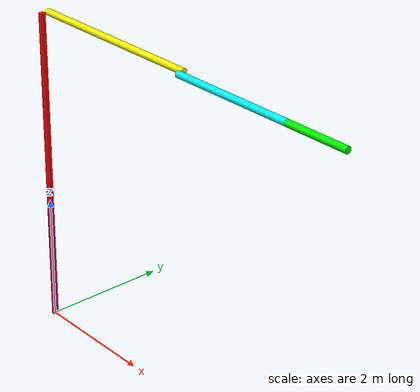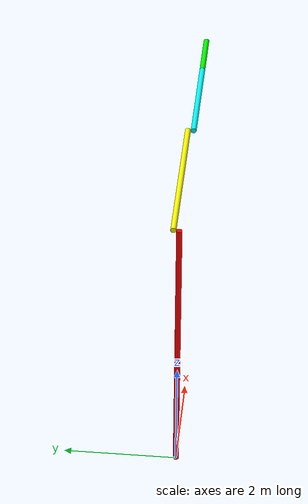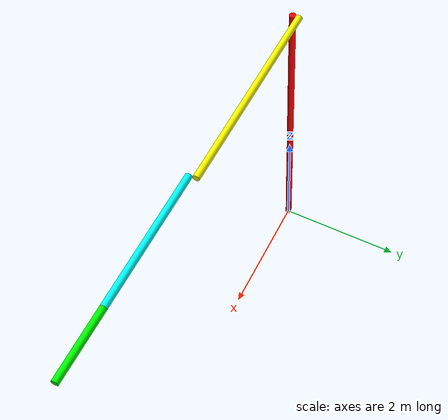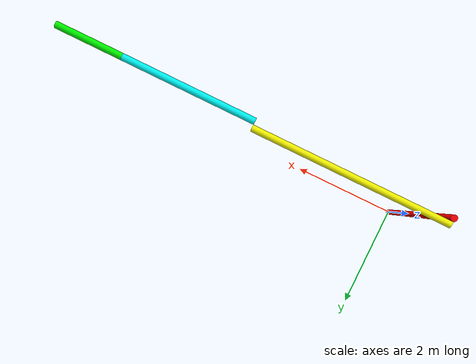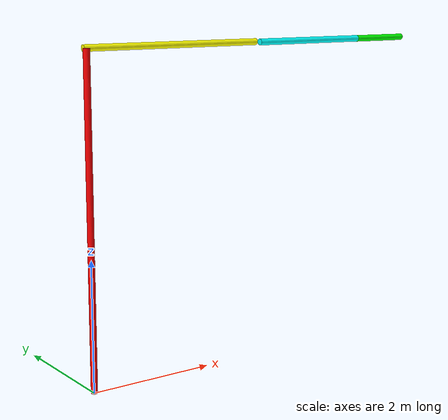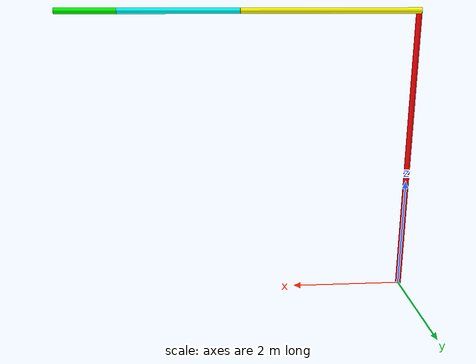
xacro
<?xml version="1.0"?>
<robot xmlns:xacro="http://www.ros.org/wiki/xacro" name="robot_arm">
    <xacro:arg name="initial_positions_file" default="initial_positions.yaml" />

    <!-- Import robot_arm urdf file -->
    <xacro:include filename="$(find description)/urdf/robot_arm.urdf.xacro" />

    <!-- Import control_xacro -->
    <xacro:include filename="robot_arm.ros2_control.xacro" />

    <xacro:robot_arm_ros2_control name="FakeSystem" initial_positions_file="$(arg initial_positions_file)"/>

</robot>

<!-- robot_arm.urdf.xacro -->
<robot name="robot_arm" xmlns:xacro="https://ww.ros.org/wiki/xacro">

    <xacro:include filename="inertia.urdf.xacro"/>
    <!-- Include Gazebo Parameters -->
    <xacro:include filename="gazebo.xacro"/>

    <!-- Include ros2_control Plugins -->
    <xacro:include filename="robot_arm_ros2_control.xacro"/>

    <xacro:property name="PI" value="3.14159265359" />
    <xacro:property name="effort" value="30.0" />
    <xacro:property name="velocity" value="10.0" />

    <xacro:macro name="default_transmission" params="number">
        <transmission name="transmission_${number}">
            <plugin>transmission_interface/SimpleTransmission</plugin>
            <actuator name="motor_${number}" role="actuator1"/>
            <joint name="joint${number}"    role="joint1">
                <mechanical_reduction>1.0</mechanical_reduction>
            </joint>
        </transmission>
    </xacro:macro>

    <link name="world"/>

    <joint name="joint1" type="continuous">
        <origin xyz="0.0 0.0 0.0" rpy="0.0 0.0 0.0"/>
        <parent link="world"/>
        <child link="a1"/>
        <axis xyz="0.0 0.0 1.0"/>
        <limit lower="-${PI}" upper="${PI}"
                effort="${effort}" velocity="${velocity}"/>
        <ros2_control>
            <hardwareInterface>hardware_interface/PositionJointInterface</hardwareInterface>
        </ros2_control>
    </joint>

    <link name="a1">
        <xacro:inertial_cylinder mass="0.5" length="5.0" radius="0.05">
            <origin xyz="0.0 0 2.5" rpy="0 0 0"/>
        </xacro:inertial_cylinder>
        <visual name="">
            <origin xyz="0.0 0.0 2.5" rpy="0.0 0.0 0.0"/>
            <geometry>
                <cylinder radius="0.05" length="5.0"/>
            </geometry>
            <material name="">
                <color rgba="1.0 0.0 0.0 1.0"/>
            </material>
        </visual>
        <collision>
            <origin xyz="0.0 0.0 2.5" rpy="0.0 0.0 0.0"/>
            <geometry>
                <cylinder radius="0.05" length="5.0"/>
            </geometry>
        </collision>
    </link>

    <joint name="joint2" type="continuous">
        <origin xyz="0.0 0.1 5.0" rpy="0.0 0.0 0.0"/>
        <parent link="a1"/>
        <child link="a2"/>
        <axis xyz="0.0 1.0 0.0"/>
        <limit lower="-${PI/2}" upper="${PI/2}"
                effort="${effort}" velocity="${velocity}"/>
        <ros2_control>
            <hardwareInterface>hardware_interface/PositionJointInterface</hardwareInterface>
        </ros2_control>
    </joint>

    <link name="a2">
        <xacro:inertial_cylinder mass="0.3" length="3.0" radius="0.05">
            <origin xyz="1.5 0 0.0" rpy="0 1.57 0"/>
        </xacro:inertial_cylinder>
        <visual name="">
            <origin xyz="1.5 0.0 0.0" rpy="0.0 1.57 0.0"/>
            <geometry>
                <cylinder radius="0.05" length="3.0"/>
            </geometry>
            <material name="">
                <color rgba="1.0 1.0 0.0 1.0"/>
            </material>
        </visual>
        <collision>
            <origin xyz="1.5 0.0 0.0" rpy="0.0 1.57 0.0"/>
            <geometry>
                <cylinder radius="0.05" length="3.0"/>
            </geometry>
        </collision>
    </link>

    <joint name="joint3" type="continuous">
        <origin xyz="3.0 -0.1 0.0" rpy="0.0 0.0 0.0"/>
        <parent link="a2"/>
        <child link="a3"/>
        <axis xyz="0.0 1.0 0.0"/>
        <limit lower="0.0" upper="${PI}"
                effort="${effort}" velocity="${velocity}"/>
        <ros2_control>
            <hardwareInterface>hardware_interface/PositionJointInterface</hardwareInterface>
        </ros2_control>
    </joint>

    <link name="a3">
        <xacro:inertial_cylinder mass="0.2" length="2.0" radius="0.05">
            <origin xyz="1.0 0 0.0" rpy="0 1.57 0"/>
        </xacro:inertial_cylinder>
        <visual name="">
            <origin xyz="1.0 0.0 0.0" rpy="0.0 1.57 0.0"/>
            <geometry>
                <cylinder radius="0.05" length="2.0"/>
            </geometry>
            <material name="">
                <color rgba="0.0 1.0 1.0 1.0"/>
            </material>
        </visual>
        <collision>
            <origin xyz="1.0 0.0 0.0" rpy="0.0 1.57 0.0"/>
            <geometry>
                <cylinder radius="0.05" length="2.0"/>
            </geometry>
        </collision>
    </link>

    <joint name="joint4" type="continuous">
        <origin xyz="2.0 0.0 0.0" rpy="0.0 0.0 0.0"/>
        <parent link="a3"/>
        <child link="a4"/>
        <axis xyz="0.0 1.0 0.0"/>
        <limit lower="-${PI/2}" upper="${PI/2}"
               effort="${effort}" velocity="${velocity}"/>
        <ros2_control>
            <hardwareInterface>hardware_interface/PositionJointInterface</hardwareInterface>
        </ros2_control>
    </joint>

    <link name="a4">
        <xacro:inertial_cylinder mass="1.0" length="1.0" radius="0.05">
            <origin xyz="0.5 0 0.0" rpy="0 1.57 0"/>
        </xacro:inertial_cylinder>
        <visual name="">
            <origin xyz="0.5 0.0 0.0" rpy="0.0 1.57 0.0"/>
            <geometry>
                <cylinder radius="0.05" length="1.0"/>
            </geometry>
            <material name="">
                <color rgba="0.0 1.0 0.0 1.0"/>
            </material>
        </visual>
        <collision>
            <origin xyz="0.5 0.0 0.0" rpy="0.0 1.57 0.0"/>
            <geometry>
                <cylinder radius="0.05" length="1.0"/>
            </geometry>
        </collision>
    </link>

    <!-- Transmissions-->
    <xacro:default_transmission number="1"/>
    <xacro:default_transmission number="2"/>
    <xacro:default_transmission number="3"/>
    <xacro:default_transmission number="4"/>

</robot>
